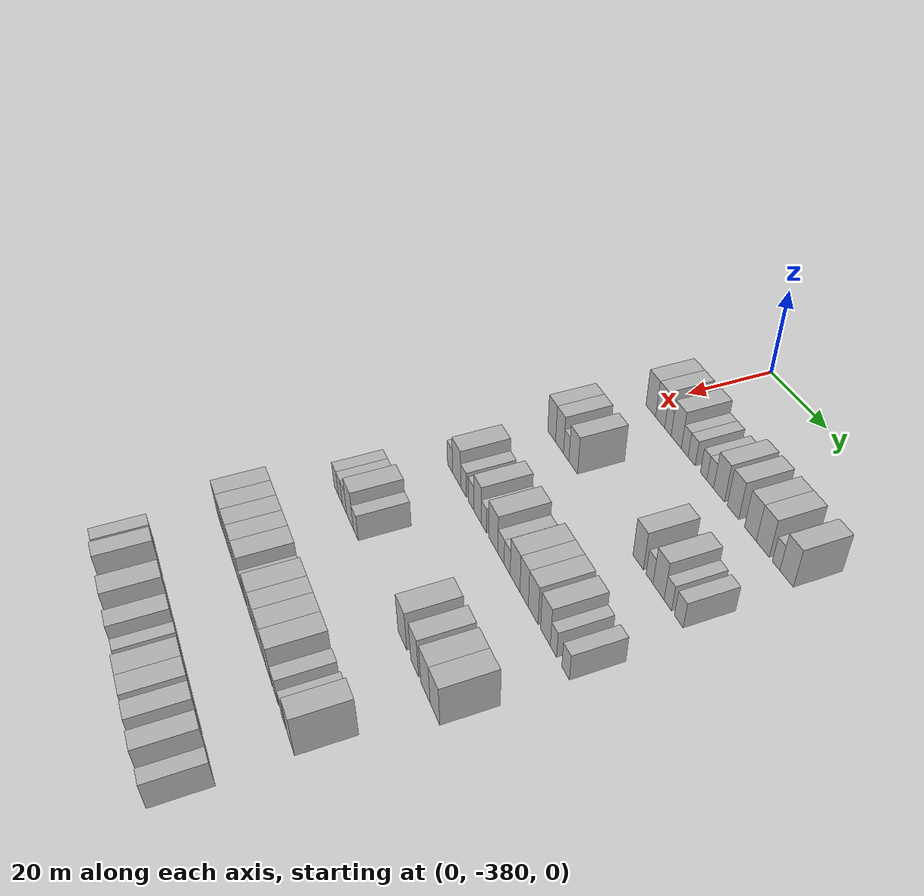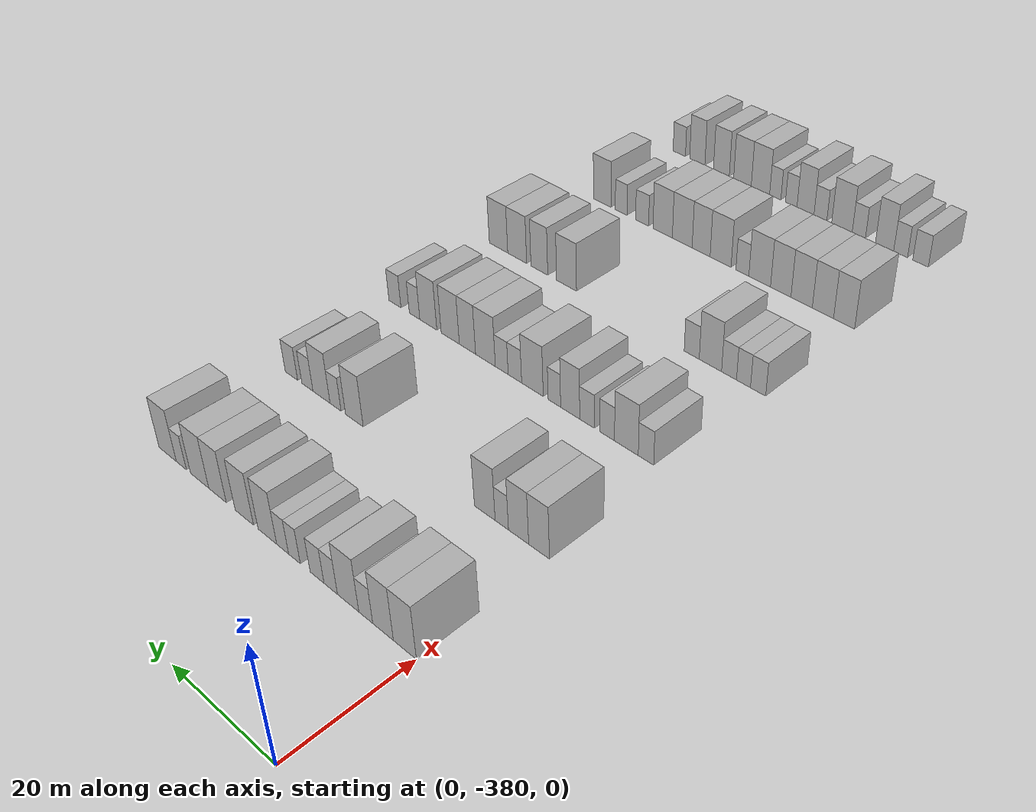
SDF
<sdf version="1.6">
 <world name="default">
  <model name="building_1">
   <static>1</static>
   <pose>25.0000 -377.9265 0 0.000000 0.000000 0.000000</pose>
   <link name="link">
    <pose>0 0 4.50 0 0 0</pose>
    <collision name="collision"><geometry><box><size>10.0000 4.1470 9.0000</size></box></geometry></collision>
    <visual name="visual">
     <cast_shadows>0</cast_shadows>
     <geometry><box><size>10.0000 4.1470 9.0000</size></box></geometry>
     <material>
      <script>
       <uri>model://HANNAS_wall/materials/scripts</uri>
       <uri>model://HANNAS_wall/materials/textures</uri>
       <name>vrc/HANNAS_wall</name>
      </script>
     </material>
    </visual>
   </link>
  </model>
  <model name="building_2">
   <static>1</static>
   <pose>25.0000 -373.9460 0 0.000000 0.000000 0.000000</pose>
   <link name="link">
    <pose>0 0 4.50 0 0 0</pose>
    <collision name="collision"><geometry><box><size>10.0000 3.8139 9.0000</size></box></geometry></collision>
    <visual name="visual">
     <cast_shadows>0</cast_shadows>
     <geometry><box><size>10.0000 3.8139 9.0000</size></box></geometry>
     <material>
      <script>
       <uri>model://HANNAS_wall/materials/scripts</uri>
       <uri>model://HANNAS_wall/materials/textures</uri>
       <name>vrc/HANNAS_wall</name>
      </script>
     </material>
    </visual>
   </link>
  </model>
  <model name="building_3">
   <static>1</static>
   <pose>25.0000 -370.7243 0 0.000000 0.000000 0.000000</pose>
   <link name="link">
    <pose>0 0 3.00 0 0 0</pose>
    <collision name="collision"><geometry><box><size>10.0000 2.6295 6.0000</size></box></geometry></collision>
    <visual name="visual">
     <cast_shadows>0</cast_shadows>
     <geometry><box><size>10.0000 2.6295 6.0000</size></box></geometry>
     <material>
      <script>
       <uri>model://HANNAS_wall/materials/scripts</uri>
       <uri>model://HANNAS_wall/materials/textures</uri>
       <name>vrc/HANNAS_wall</name>
      </script>
     </material>
    </visual>
   </link>
  </model>
  <model name="building_4">
   <static>1</static>
   <pose>25.0000 -367.3511 0 0.000000 0.000000 0.000000</pose>
   <link name="link">
    <pose>0 0 4.50 0 0 0</pose>
    <collision name="collision"><geometry><box><size>10.0000 4.1169 9.0000</size></box></geometry></collision>
    <visual name="visual">
     <cast_shadows>0</cast_shadows>
     <geometry><box><size>10.0000 4.1169 9.0000</size></box></geometry>
     <material>
      <script>
       <uri>model://HANNAS_wall/materials/scripts</uri>
       <uri>model://HANNAS_wall/materials/textures</uri>
       <name>vrc/HANNAS_wall</name>
      </script>
     </material>
    </visual>
   </link>
  </model>
  <model name="building_5">
   <static>1</static>
   <pose>25.0000 -363.9666 0 0.000000 0.000000 0.000000</pose>
   <link name="link">
    <pose>0 0 3.00 0 0 0</pose>
    <collision name="collision"><geometry><box><size>10.0000 2.6521 6.0000</size></box></geometry></collision>
    <visual name="visual">
     <cast_shadows>0</cast_shadows>
     <geometry><box><size>10.0000 2.6521 6.0000</size></box></geometry>
     <material>
      <script>
       <uri>model://HANNAS_wall/materials/scripts</uri>
       <uri>model://HANNAS_wall/materials/textures</uri>
       <name>vrc/HANNAS_wall</name>
      </script>
     </material>
    </visual>
   </link>
  </model>
  <model name="building_6">
   <static>1</static>
   <pose>25.0000 -361.2505 0 0.000000 0.000000 0.000000</pose>
   <link name="link">
    <pose>0 0 3.00 0 0 0</pose>
    <collision name="collision"><geometry><box><size>10.0000 2.7803 6.0000</size></box></geometry></collision>
    <visual name="visual">
     <cast_shadows>0</cast_shadows>
     <geometry><box><size>10.0000 2.7803 6.0000</size></box></geometry>
     <material>
      <script>
       <uri>model://HANNAS_wall/materials/scripts</uri>
       <uri>model://HANNAS_wall/materials/textures</uri>
       <name>vrc/HANNAS_wall</name>
      </script>
     </material>
    </visual>
   </link>
  </model>
  <model name="building_7">
   <static>1</static>
   <pose>25.0000 -356.6554 0 0.000000 0.000000 0.000000</pose>
   <link name="link">
    <pose>0 0 3.00 0 0 0</pose>
    <collision name="collision"><geometry><box><size>10.0000 2.4098 6.0000</size></box></geometry></collision>
    <visual name="visual">
     <cast_shadows>0</cast_shadows>
     <geometry><box><size>10.0000 2.4098 6.0000</size></box></geometry>
     <material>
      <script>
       <uri>model://HANNAS_wall/materials/scripts</uri>
       <uri>model://HANNAS_wall/materials/textures</uri>
       <name>vrc/HANNAS_wall</name>
      </script>
     </material>
    </visual>
   </link>
  </model>
  <model name="building_8">
   <static>1</static>
   <pose>25.0000 -354.2036 0 0.000000 0.000000 0.000000</pose>
   <link name="link">
    <pose>0 0 3.00 0 0 0</pose>
    <collision name="collision"><geometry><box><size>10.0000 2.4939 6.0000</size></box></geometry></collision>
    <visual name="visual">
     <cast_shadows>0</cast_shadows>
     <geometry><box><size>10.0000 2.4939 6.0000</size></box></geometry>
     <material>
      <script>
       <uri>model://HANNAS_wall/materials/scripts</uri>
       <uri>model://HANNAS_wall/materials/textures</uri>
       <name>vrc/HANNAS_wall</name>
      </script>
     </material>
    </visual>
   </link>
  </model>
  <model name="building_9">
   <static>1</static>
   <pose>25.0000 -350.9690 0 0.000000 0.000000 0.000000</pose>
   <link name="link">
    <pose>0 0 4.50 0 0 0</pose>
    <collision name="collision"><geometry><box><size>10.0000 3.9753 9.0000</size></box></geometry></collision>
    <visual name="visual">
     <cast_shadows>0</cast_shadows>
     <geometry><box><size>10.0000 3.9753 9.0000</size></box></geometry>
     <material>
      <script>
       <uri>model://HANNAS_wall/materials/scripts</uri>
       <uri>model://HANNAS_wall/materials/textures</uri>
       <name>vrc/HANNAS_wall</name>
      </script>
     </material>
    </visual>
   </link>
  </model>
  <model name="building_10">
   <static>1</static>
   <pose>25.0000 -345.9639 0 0.000000 0.000000 0.000000</pose>
   <link name="link">
    <pose>0 0 4.50 0 0 0</pose>
    <collision name="collision"><geometry><box><size>10.0000 4.0350 9.0000</size></box></geometry></collision>
    <visual name="visual">
     <cast_shadows>0</cast_shadows>
     <geometry><box><size>10.0000 4.0350 9.0000</size></box></geometry>
     <material>
      <script>
       <uri>model://HANNAS_wall/materials/scripts</uri>
       <uri>model://HANNAS_wall/materials/textures</uri>
       <name>vrc/HANNAS_wall</name>
      </script>
     </material>
    </visual>
   </link>
  </model>
  <model name="building_11">
   <static>1</static>
   <pose>25.0000 -339.9500 0 0.000000 0.000000 0.000000</pose>
   <link name="link">
    <pose>0 0 4.50 0 0 0</pose>
    <collision name="collision"><geometry><box><size>10.0000 3.9927 9.0000</size></box></geometry></collision>
    <visual name="visual">
     <cast_shadows>0</cast_shadows>
     <geometry><box><size>10.0000 3.9927 9.0000</size></box></geometry>
     <material>
      <script>
       <uri>model://HANNAS_wall/materials/scripts</uri>
       <uri>model://HANNAS_wall/materials/textures</uri>
       <name>vrc/HANNAS_wall</name>
      </script>
     </material>
    </visual>
   </link>
  </model>
  <model name="building_12">
   <static>1</static>
   <pose>25.0000 -335.8329 0 0.000000 0.000000 0.000000</pose>
   <link name="link">
    <pose>0 0 4.50 0 0 0</pose>
    <collision name="collision"><geometry><box><size>10.0000 4.2416 9.0000</size></box></geometry></collision>
    <visual name="visual">
     <cast_shadows>0</cast_shadows>
     <geometry><box><size>10.0000 4.2416 9.0000</size></box></geometry>
     <material>
      <script>
       <uri>model://HANNAS_wall/materials/scripts</uri>
       <uri>model://HANNAS_wall/materials/textures</uri>
       <name>vrc/HANNAS_wall</name>
      </script>
     </material>
    </visual>
   </link>
  </model>
  <model name="building_13">
   <static>1</static>
   <pose>25.0000 -331.5101 0 0.000000 0.000000 0.000000</pose>
   <link name="link">
    <pose>0 0 3.00 0 0 0</pose>
    <collision name="collision"><geometry><box><size>10.0000 2.4041 6.0000</size></box></geometry></collision>
    <visual name="visual">
     <cast_shadows>0</cast_shadows>
     <geometry><box><size>10.0000 2.4041 6.0000</size></box></geometry>
     <material>
      <script>
       <uri>model://HANNAS_wall/materials/scripts</uri>
       <uri>model://HANNAS_wall/materials/textures</uri>
       <name>vrc/HANNAS_wall</name>
      </script>
     </material>
    </visual>
   </link>
  </model>
  <model name="building_14">
   <static>1</static>
   <pose>25.0000 -328.2037 0 0.000000 0.000000 0.000000</pose>
   <link name="link">
    <pose>0 0 4.50 0 0 0</pose>
    <collision name="collision"><geometry><box><size>10.0000 4.2085 9.0000</size></box></geometry></collision>
    <visual name="visual">
     <cast_shadows>0</cast_shadows>
     <geometry><box><size>10.0000 4.2085 9.0000</size></box></geometry>
     <material>
      <script>
       <uri>model://HANNAS_wall/materials/scripts</uri>
       <uri>model://HANNAS_wall/materials/textures</uri>
       <name>vrc/HANNAS_wall</name>
      </script>
     </material>
    </visual>
   </link>
  </model>
  <model name="building_190">
   <static>1</static>
   <pose>47.0000 -378.1285 0 0.000000 0.000000 0.000000</pose>
   <link name="link">
    <pose>0 0 4.50 0 0 0</pose>
    <collision name="collision"><geometry><box><size>10.0000 3.7429 9.0000</size></box></geometry></collision>
    <visual name="visual">
     <cast_shadows>0</cast_shadows>
     <geometry><box><size>10.0000 3.7429 9.0000</size></box></geometry>
     <material>
      <script>
       <uri>model://HANNAS_wall/materials/scripts</uri>
       <uri>model://HANNAS_wall/materials/textures</uri>
       <name>vrc/HANNAS_wall</name>
      </script>
     </material>
    </visual>
   </link>
  </model>
  <model name="building_191">
   <static>1</static>
   <pose>47.0000 -374.4032 0 0.000000 0.000000 0.000000</pose>
   <link name="link">
    <pose>0 0 4.50 0 0 0</pose>
    <collision name="collision"><geometry><box><size>10.0000 3.7078 9.0000</size></box></geometry></collision>
    <visual name="visual">
     <cast_shadows>0</cast_shadows>
     <geometry><box><size>10.0000 3.7078 9.0000</size></box></geometry>
     <material>
      <script>
       <uri>model://HANNAS_wall/materials/scripts</uri>
       <uri>model://HANNAS_wall/materials/textures</uri>
       <name>vrc/HANNAS_wall</name>
      </script>
     </material>
    </visual>
   </link>
  </model>
  <model name="building_192">
   <static>1</static>
   <pose>47.0000 -371.3031 0 0.000000 0.000000 0.000000</pose>
   <link name="link">
    <pose>0 0 3.00 0 0 0</pose>
    <collision name="collision"><geometry><box><size>10.0000 2.4923 6.0000</size></box></geometry></collision>
    <visual name="visual">
     <cast_shadows>0</cast_shadows>
     <geometry><box><size>10.0000 2.4923 6.0000</size></box></geometry>
     <material>
      <script>
       <uri>model://HANNAS_wall/materials/scripts</uri>
       <uri>model://HANNAS_wall/materials/textures</uri>
       <name>vrc/HANNAS_wall</name>
      </script>
     </material>
    </visual>
   </link>
  </model>
  <model name="building_193">
   <static>1</static>
   <pose>47.0000 -368.0840 0 0.000000 0.000000 0.000000</pose>
   <link name="link">
    <pose>0 0 4.50 0 0 0</pose>
    <collision name="collision"><geometry><box><size>10.0000 3.9459 9.0000</size></box></geometry></collision>
    <visual name="visual">
     <cast_shadows>0</cast_shadows>
     <geometry><box><size>10.0000 3.9459 9.0000</size></box></geometry>
     <material>
      <script>
       <uri>model://HANNAS_wall/materials/scripts</uri>
       <uri>model://HANNAS_wall/materials/textures</uri>
       <name>vrc/HANNAS_wall</name>
      </script>
     </material>
    </visual>
   </link>
  </model>
  <model name="building_194">
   <static>1</static>
   <pose>47.0000 -341.2129 0 0.000000 0.000000 0.000000</pose>
   <link name="link">
    <pose>0 0 4.50 0 0 0</pose>
    <collision name="collision"><geometry><box><size>10.0000 3.9321 9.0000</size></box></geometry></collision>
    <visual name="visual">
     <cast_shadows>0</cast_shadows>
     <geometry><box><size>10.0000 3.9321 9.0000</size></box></geometry>
     <material>
      <script>
       <uri>model://HANNAS_wall/materials/scripts</uri>
       <uri>model://HANNAS_wall/materials/textures</uri>
       <name>vrc/HANNAS_wall</name>
      </script>
     </material>
    </visual>
   </link>
  </model>
  <model name="building_195">
   <static>1</static>
   <pose>47.0000 -336.9878 0 0.000000 0.000000 0.000000</pose>
   <link name="link">
    <pose>0 0 3.00 0 0 0</pose>
    <collision name="collision"><geometry><box><size>10.0000 2.5180 6.0000</size></box></geometry></collision>
    <visual name="visual">
     <cast_shadows>0</cast_shadows>
     <geometry><box><size>10.0000 2.5180 6.0000</size></box></geometry>
     <material>
      <script>
       <uri>model://HANNAS_wall/materials/scripts</uri>
       <uri>model://HANNAS_wall/materials/textures</uri>
       <name>vrc/HANNAS_wall</name>
      </script>
     </material>
    </visual>
   </link>
  </model>
  <model name="building_196">
   <static>1</static>
   <pose>47.0000 -333.7466 0 0.000000 0.000000 0.000000</pose>
   <link name="link">
    <pose>0 0 4.50 0 0 0</pose>
    <collision name="collision"><geometry><box><size>10.0000 3.9646 9.0000</size></box></geometry></collision>
    <visual name="visual">
     <cast_shadows>0</cast_shadows>
     <geometry><box><size>10.0000 3.9646 9.0000</size></box></geometry>
     <material>
      <script>
       <uri>model://HANNAS_wall/materials/scripts</uri>
       <uri>model://HANNAS_wall/materials/textures</uri>
       <name>vrc/HANNAS_wall</name>
      </script>
     </material>
    </visual>
   </link>
  </model>
  <model name="building_197">
   <static>1</static>
   <pose>47.0000 -330.4567 0 0.000000 0.000000 0.000000</pose>
   <link name="link">
    <pose>0 0 3.00 0 0 0</pose>
    <collision name="collision"><geometry><box><size>10.0000 2.6152 6.0000</size></box></geometry></collision>
    <visual name="visual">
     <cast_shadows>0</cast_shadows>
     <geometry><box><size>10.0000 2.6152 6.0000</size></box></geometry>
     <material>
      <script>
       <uri>model://HANNAS_wall/materials/scripts</uri>
       <uri>model://HANNAS_wall/materials/textures</uri>
       <name>vrc/HANNAS_wall</name>
      </script>
     </material>
    </visual>
   </link>
  </model>
  <model name="building_198">
   <static>1</static>
   <pose>47.0000 -326.6626 0 0.000000 0.000000 0.000000</pose>
   <link name="link">
    <pose>0 0 3.00 0 0 0</pose>
    <collision name="collision"><geometry><box><size>10.0000 2.9728 6.0000</size></box></geometry></collision>
    <visual name="visual">
     <cast_shadows>0</cast_shadows>
     <geometry><box><size>10.0000 2.9728 6.0000</size></box></geometry>
     <material>
      <script>
       <uri>model://HANNAS_wall/materials/scripts</uri>
       <uri>model://HANNAS_wall/materials/textures</uri>
       <name>vrc/HANNAS_wall</name>
      </script>
     </material>
    </visual>
   </link>
  </model>
  <model name="building_369">
   <static>1</static>
   <pose>69.0000 -376.5888 0 0.000000 0.000000 0.000000</pose>
   <link name="link">
    <pose>0 0 3.00 0 0 0</pose>
    <collision name="collision"><geometry><box><size>10.0000 2.8224 6.0000</size></box></geometry></collision>
    <visual name="visual">
     <cast_shadows>0</cast_shadows>
     <geometry><box><size>10.0000 2.8224 6.0000</size></box></geometry>
     <material>
      <script>
       <uri>model://HANNAS_wall/materials/scripts</uri>
       <uri>model://HANNAS_wall/materials/textures</uri>
       <name>vrc/HANNAS_wall</name>
      </script>
     </material>
    </visual>
   </link>
  </model>
  <model name="building_370">
   <static>1</static>
   <pose>69.0000 -372.9656 0 0.000000 0.000000 0.000000</pose>
   <link name="link">
    <pose>0 0 4.50 0 0 0</pose>
    <collision name="collision"><geometry><box><size>10.0000 4.4240 9.0000</size></box></geometry></collision>
    <visual name="visual">
     <cast_shadows>0</cast_shadows>
     <geometry><box><size>10.0000 4.4240 9.0000</size></box></geometry>
     <material>
      <script>
       <uri>model://HANNAS_wall/materials/scripts</uri>
       <uri>model://HANNAS_wall/materials/textures</uri>
       <name>vrc/HANNAS_wall</name>
      </script>
     </material>
    </visual>
   </link>
  </model>
  <model name="building_371">
   <static>1</static>
   <pose>69.0000 -369.3298 0 0.000000 0.000000 0.000000</pose>
   <link name="link">
    <pose>0 0 3.00 0 0 0</pose>
    <collision name="collision"><geometry><box><size>10.0000 2.8475 6.0000</size></box></geometry></collision>
    <visual name="visual">
     <cast_shadows>0</cast_shadows>
     <geometry><box><size>10.0000 2.8475 6.0000</size></box></geometry>
     <material>
      <script>
       <uri>model://HANNAS_wall/materials/scripts</uri>
       <uri>model://HANNAS_wall/materials/textures</uri>
       <name>vrc/HANNAS_wall</name>
      </script>
     </material>
    </visual>
   </link>
  </model>
  <model name="building_372">
   <static>1</static>
   <pose>69.0000 -365.4876 0 0.000000 0.000000 0.000000</pose>
   <link name="link">
    <pose>0 0 3.00 0 0 0</pose>
    <collision name="collision"><geometry><box><size>10.0000 2.8370 6.0000</size></box></geometry></collision>
    <visual name="visual">
     <cast_shadows>0</cast_shadows>
     <geometry><box><size>10.0000 2.8370 6.0000</size></box></geometry>
     <material>
      <script>
       <uri>model://HANNAS_wall/materials/scripts</uri>
       <uri>model://HANNAS_wall/materials/textures</uri>
       <name>vrc/HANNAS_wall</name>
      </script>
     </material>
    </visual>
   </link>
  </model>
  <model name="building_373">
   <static>1</static>
   <pose>69.0000 -362.1826 0 0.000000 0.000000 0.000000</pose>
   <link name="link">
    <pose>0 0 4.50 0 0 0</pose>
    <collision name="collision"><geometry><box><size>10.0000 3.7731 9.0000</size></box></geometry></collision>
    <visual name="visual">
     <cast_shadows>0</cast_shadows>
     <geometry><box><size>10.0000 3.7731 9.0000</size></box></geometry>
     <material>
      <script>
       <uri>model://HANNAS_wall/materials/scripts</uri>
       <uri>model://HANNAS_wall/materials/textures</uri>
       <name>vrc/HANNAS_wall</name>
      </script>
     </material>
    </visual>
   </link>
  </model>
  <model name="building_374">
   <static>1</static>
   <pose>69.0000 -359.0438 0 0.000000 0.000000 0.000000</pose>
   <link name="link">
    <pose>0 0 3.00 0 0 0</pose>
    <collision name="collision"><geometry><box><size>10.0000 2.5043 6.0000</size></box></geometry></collision>
    <visual name="visual">
     <cast_shadows>0</cast_shadows>
     <geometry><box><size>10.0000 2.5043 6.0000</size></box></geometry>
     <material>
      <script>
       <uri>model://HANNAS_wall/materials/scripts</uri>
       <uri>model://HANNAS_wall/materials/textures</uri>
       <name>vrc/HANNAS_wall</name>
      </script>
     </material>
    </visual>
   </link>
  </model>
  <model name="building_375">
   <static>1</static>
   <pose>69.0000 -354.5667 0 0.000000 0.000000 0.000000</pose>
   <link name="link">
    <pose>0 0 4.50 0 0 0</pose>
    <collision name="collision"><geometry><box><size>10.0000 4.4499 9.0000</size></box></geometry></collision>
    <visual name="visual">
     <cast_shadows>0</cast_shadows>
     <geometry><box><size>10.0000 4.4499 9.0000</size></box></geometry>
     <material>
      <script>
       <uri>model://HANNAS_wall/materials/scripts</uri>
       <uri>model://HANNAS_wall/materials/textures</uri>
       <name>vrc/HANNAS_wall</name>
      </script>
     </material>
    </visual>
   </link>
  </model>
  <model name="building_376">
   <static>1</static>
   <pose>69.0000 -350.9269 0 0.000000 0.000000 0.000000</pose>
   <link name="link">
    <pose>0 0 3.00 0 0 0</pose>
    <collision name="collision"><geometry><box><size>10.0000 2.8296 6.0000</size></box></geometry></collision>
    <visual name="visual">
     <cast_shadows>0</cast_shadows>
     <geometry><box><size>10.0000 2.8296 6.0000</size></box></geometry>
     <material>
      <script>
       <uri>model://HANNAS_wall/materials/scripts</uri>
       <uri>model://HANNAS_wall/materials/textures</uri>
       <name>vrc/HANNAS_wall</name>
      </script>
     </material>
    </visual>
   </link>
  </model>
  <model name="building_377">
   <static>1</static>
   <pose>69.0000 -348.1424 0 0.000000 0.000000 0.000000</pose>
   <link name="link">
    <pose>0 0 3.00 0 0 0</pose>
    <collision name="collision"><geometry><box><size>10.0000 2.7395 6.0000</size></box></geometry></collision>
    <visual name="visual">
     <cast_shadows>0</cast_shadows>
     <geometry><box><size>10.0000 2.7395 6.0000</size></box></geometry>
     <material>
      <script>
       <uri>model://HANNAS_wall/materials/scripts</uri>
       <uri>model://HANNAS_wall/materials/textures</uri>
       <name>vrc/HANNAS_wall</name>
      </script>
     </material>
    </visual>
   </link>
  </model>
  <model name="building_378">
   <static>1</static>
   <pose>69.0000 -344.6300 0 0.000000 0.000000 0.000000</pose>
   <link name="link">
    <pose>0 0 4.50 0 0 0</pose>
    <collision name="collision"><geometry><box><size>10.0000 4.2852 9.0000</size></box></geometry></collision>
    <visual name="visual">
     <cast_shadows>0</cast_shadows>
     <geometry><box><size>10.0000 4.2852 9.0000</size></box></geometry>
     <material>
      <script>
       <uri>model://HANNAS_wall/materials/scripts</uri>
       <uri>model://HANNAS_wall/materials/textures</uri>
       <name>vrc/HANNAS_wall</name>
      </script>
     </material>
    </visual>
   </link>
  </model>
  <model name="building_379">
   <static>1</static>
   <pose>69.0000 -340.6866 0 0.000000 0.000000 0.000000</pose>
   <link name="link">
    <pose>0 0 4.50 0 0 0</pose>
    <collision name="collision"><geometry><box><size>10.0000 3.6016 9.0000</size></box></geometry></collision>
    <visual name="visual">
     <cast_shadows>0</cast_shadows>
     <geometry><box><size>10.0000 3.6016 9.0000</size></box></geometry>
     <material>
      <script>
       <uri>model://HANNAS_wall/materials/scripts</uri>
       <uri>model://HANNAS_wall/materials/textures</uri>
       <name>vrc/HANNAS_wall</name>
      </script>
     </material>
    </visual>
   </link>
  </model>
  <model name="building_380">
   <static>1</static>
   <pose>69.0000 -336.8320 0 0.000000 0.000000 0.000000</pose>
   <link name="link">
    <pose>0 0 4.50 0 0 0</pose>
    <collision name="collision"><geometry><box><size>10.0000 4.1077 9.0000</size></box></geometry></collision>
    <visual name="visual">
     <cast_shadows>0</cast_shadows>
     <geometry><box><size>10.0000 4.1077 9.0000</size></box></geometry>
     <material>
      <script>
       <uri>model://HANNAS_wall/materials/scripts</uri>
       <uri>model://HANNAS_wall/materials/textures</uri>
       <name>vrc/HANNAS_wall</name>
      </script>
     </material>
    </visual>
   </link>
  </model>
  <model name="building_381">
   <static>1</static>
   <pose>69.0000 -331.8034 0 0.000000 0.000000 0.000000</pose>
   <link name="link">
    <pose>0 0 4.50 0 0 0</pose>
    <collision name="collision"><geometry><box><size>10.0000 3.9494 9.0000</size></box></geometry></collision>
    <visual name="visual">
     <cast_shadows>0</cast_shadows>
     <geometry><box><size>10.0000 3.9494 9.0000</size></box></geometry>
     <material>
      <script>
       <uri>model://HANNAS_wall/materials/scripts</uri>
       <uri>model://HANNAS_wall/materials/textures</uri>
       <name>vrc/HANNAS_wall</name>
      </script>
     </material>
    </visual>
   </link>
  </model>
  <model name="building_382">
   <static>1</static>
   <pose>69.0000 -328.5934 0 0.000000 0.000000 0.000000</pose>
   <link name="link">
    <pose>0 0 3.00 0 0 0</pose>
    <collision name="collision"><geometry><box><size>10.0000 2.4705 6.0000</size></box></geometry></collision>
    <visual name="visual">
     <cast_shadows>0</cast_shadows>
     <geometry><box><size>10.0000 2.4705 6.0000</size></box></geometry>
     <material>
      <script>
       <uri>model://HANNAS_wall/materials/scripts</uri>
       <uri>model://HANNAS_wall/materials/textures</uri>
       <name>vrc/HANNAS_wall</name>
      </script>
     </material>
    </visual>
   </link>
  </model>
  <model name="building_383">
   <static>1</static>
   <pose>69.0000 -323.9112 0 0.000000 0.000000 0.000000</pose>
   <link name="link">
    <pose>0 0 3.00 0 0 0</pose>
    <collision name="collision"><geometry><box><size>10.0000 2.8940 6.0000</size></box></geometry></collision>
    <visual name="visual">
     <cast_shadows>0</cast_shadows>
     <geometry><box><size>10.0000 2.8940 6.0000</size></box></geometry>
     <material>
      <script>
       <uri>model://HANNAS_wall/materials/scripts</uri>
       <uri>model://HANNAS_wall/materials/textures</uri>
       <name>vrc/HANNAS_wall</name>
      </script>
     </material>
    </visual>
   </link>
  </model>
  <model name="building_540">
   <static>1</static>
   <pose>91.0000 -378.6105 0 0.000000 0.000000 0.000000</pose>
   <link name="link">
    <pose>0 0 3.00 0 0 0</pose>
    <collision name="collision"><geometry><box><size>10.0000 2.7790 6.0000</size></box></geometry></collision>
    <visual name="visual">
     <cast_shadows>0</cast_shadows>
     <geometry><box><size>10.0000 2.7790 6.0000</size></box></geometry>
     <material>
      <script>
       <uri>model://HANNAS_wall/materials/scripts</uri>
       <uri>model://HANNAS_wall/materials/textures</uri>
       <name>vrc/HANNAS_wall</name>
      </script>
     </material>
    </visual>
   </link>
  </model>
  <model name="building_541">
   <static>1</static>
   <pose>91.0000 -375.9244 0 0.000000 0.000000 0.000000</pose>
   <link name="link">
    <pose>0 0 3.00 0 0 0</pose>
    <collision name="collision"><geometry><box><size>10.0000 2.5931 6.0000</size></box></geometry></collision>
    <visual name="visual">
     <cast_shadows>0</cast_shadows>
     <geometry><box><size>10.0000 2.5931 6.0000</size></box></geometry>
     <material>
      <script>
       <uri>model://HANNAS_wall/materials/scripts</uri>
       <uri>model://HANNAS_wall/materials/textures</uri>
       <name>vrc/HANNAS_wall</name>
      </script>
     </material>
    </visual>
   </link>
  </model>
  <model name="building_542">
   <static>1</static>
   <pose>91.0000 -373.2211 0 0.000000 0.000000 0.000000</pose>
   <link name="link">
    <pose>0 0 3.00 0 0 0</pose>
    <collision name="collision"><geometry><box><size>10.0000 2.8136 6.0000</size></box></geometry></collision>
    <visual name="visual">
     <cast_shadows>0</cast_shadows>
     <geometry><box><size>10.0000 2.8136 6.0000</size></box></geometry>
     <material>
      <script>
       <uri>model://HANNAS_wall/materials/scripts</uri>
       <uri>model://HANNAS_wall/materials/textures</uri>
       <name>vrc/HANNAS_wall</name>
      </script>
     </material>
    </visual>
   </link>
  </model>
  <model name="building_543">
   <static>1</static>
   <pose>91.0000 -369.6739 0 0.000000 0.000000 0.000000</pose>
   <link name="link">
    <pose>0 0 4.50 0 0 0</pose>
    <collision name="collision"><geometry><box><size>10.0000 4.2807 9.0000</size></box></geometry></collision>
    <visual name="visual">
     <cast_shadows>0</cast_shadows>
     <geometry><box><size>10.0000 4.2807 9.0000</size></box></geometry>
     <material>
      <script>
       <uri>model://HANNAS_wall/materials/scripts</uri>
       <uri>model://HANNAS_wall/materials/textures</uri>
       <name>vrc/HANNAS_wall</name>
      </script>
     </material>
    </visual>
   </link>
  </model>
  <model name="building_544">
   <static>1</static>
   <pose>91.0000 -366.0645 0 0.000000 0.000000 0.000000</pose>
   <link name="link">
    <pose>0 0 3.00 0 0 0</pose>
    <collision name="collision"><geometry><box><size>10.0000 2.9380 6.0000</size></box></geometry></collision>
    <visual name="visual">
     <cast_shadows>0</cast_shadows>
     <geometry><box><size>10.0000 2.9380 6.0000</size></box></geometry>
     <material>
      <script>
       <uri>model://HANNAS_wall/materials/scripts</uri>
       <uri>model://HANNAS_wall/materials/textures</uri>
       <name>vrc/HANNAS_wall</name>
      </script>
     </material>
    </visual>
   </link>
  </model>
  <model name="building_545">
   <static>1</static>
   <pose>91.0000 -339.9380 0 0.000000 0.000000 0.000000</pose>
   <link name="link">
    <pose>0 0 4.50 0 0 0</pose>
    <collision name="collision"><geometry><box><size>10.0000 4.4384 9.0000</size></box></geometry></collision>
    <visual name="visual">
     <cast_shadows>0</cast_shadows>
     <geometry><box><size>10.0000 4.4384 9.0000</size></box></geometry>
     <material>
      <script>
       <uri>model://HANNAS_wall/materials/scripts</uri>
       <uri>model://HANNAS_wall/materials/textures</uri>
       <name>vrc/HANNAS_wall</name>
      </script>
     </material>
    </visual>
   </link>
  </model>
  <model name="building_546">
   <static>1</static>
   <pose>91.0000 -333.7948 0 0.000000 0.000000 0.000000</pose>
   <link name="link">
    <pose>0 0 4.50 0 0 0</pose>
    <collision name="collision"><geometry><box><size>10.0000 3.8480 9.0000</size></box></geometry></collision>
    <visual name="visual">
     <cast_shadows>0</cast_shadows>
     <geometry><box><size>10.0000 3.8480 9.0000</size></box></geometry>
     <material>
      <script>
       <uri>model://HANNAS_wall/materials/scripts</uri>
       <uri>model://HANNAS_wall/materials/textures</uri>
       <name>vrc/HANNAS_wall</name>
      </script>
     </material>
    </visual>
   </link>
  </model>
  <model name="building_547">
   <static>1</static>
   <pose>91.0000 -328.6469 0 0.000000 0.000000 0.000000</pose>
   <link name="link">
    <pose>0 0 4.50 0 0 0</pose>
    <collision name="collision"><geometry><box><size>10.0000 4.4477 9.0000</size></box></geometry></collision>
    <visual name="visual">
     <cast_shadows>0</cast_shadows>
     <geometry><box><size>10.0000 4.4477 9.0000</size></box></geometry>
     <material>
      <script>
       <uri>model://HANNAS_wall/materials/scripts</uri>
       <uri>model://HANNAS_wall/materials/textures</uri>
       <name>vrc/HANNAS_wall</name>
      </script>
     </material>
    </visual>
   </link>
  </model>
  <model name="building_548">
   <static>1</static>
   <pose>91.0000 -324.2189 0 0.000000 0.000000 0.000000</pose>
   <link name="link">
    <pose>0 0 4.50 0 0 0</pose>
    <collision name="collision"><geometry><box><size>10.0000 4.4083 9.0000</size></box></geometry></collision>
    <visual name="visual">
     <cast_shadows>0</cast_shadows>
     <geometry><box><size>10.0000 4.4083 9.0000</size></box></geometry>
     <material>
      <script>
       <uri>model://HANNAS_wall/materials/scripts</uri>
       <uri>model://HANNAS_wall/materials/textures</uri>
       <name>vrc/HANNAS_wall</name>
      </script>
     </material>
    </visual>
   </link>
  </model>
  <model name="building_727">
   <static>1</static>
   <pose>113.0000 -378.0349 0 0.000000 0.000000 0.000000</pose>
   <link name="link">
    <pose>0 0 4.50 0 0 0</pose>
    <collision name="collision"><geometry><box><size>10.0000 3.9301 9.0000</size></box></geometry></collision>
    <visual name="visual">
     <cast_shadows>0</cast_shadows>
     <geometry><box><size>10.0000 3.9301 9.0000</size></box></geometry>
     <material>
      <script>
       <uri>model://HANNAS_wall/materials/scripts</uri>
       <uri>model://HANNAS_wall/materials/textures</uri>
       <name>vrc/HANNAS_wall</name>
      </script>
     </material>
    </visual>
   </link>
  </model>
  <model name="building_728">
   <static>1</static>
   <pose>113.0000 -374.0432 0 0.000000 0.000000 0.000000</pose>
   <link name="link">
    <pose>0 0 4.50 0 0 0</pose>
    <collision name="collision"><geometry><box><size>10.0000 4.0533 9.0000</size></box></geometry></collision>
    <visual name="visual">
     <cast_shadows>0</cast_shadows>
     <geometry><box><size>10.0000 4.0533 9.0000</size></box></geometry>
     <material>
      <script>
       <uri>model://HANNAS_wall/materials/scripts</uri>
       <uri>model://HANNAS_wall/materials/textures</uri>
       <name>vrc/HANNAS_wall</name>
      </script>
     </material>
    </visual>
   </link>
  </model>
  <model name="building_729">
   <static>1</static>
   <pose>113.0000 -369.9414 0 0.000000 0.000000 0.000000</pose>
   <link name="link">
    <pose>0 0 4.50 0 0 0</pose>
    <collision name="collision"><geometry><box><size>10.0000 4.1503 9.0000</size></box></geometry></collision>
    <visual name="visual">
     <cast_shadows>0</cast_shadows>
     <geometry><box><size>10.0000 4.1503 9.0000</size></box></geometry>
     <material>
      <script>
       <uri>model://HANNAS_wall/materials/scripts</uri>
       <uri>model://HANNAS_wall/materials/textures</uri>
       <name>vrc/HANNAS_wall</name>
      </script>
     </material>
    </visual>
   </link>
  </model>
  <model name="building_730">
   <static>1</static>
   <pose>113.0000 -365.8363 0 0.000000 0.000000 0.000000</pose>
   <link name="link">
    <pose>0 0 4.50 0 0 0</pose>
    <collision name="collision"><geometry><box><size>10.0000 4.0599 9.0000</size></box></geometry></collision>
    <visual name="visual">
     <cast_shadows>0</cast_shadows>
     <geometry><box><size>10.0000 4.0599 9.0000</size></box></geometry>
     <material>
      <script>
       <uri>model://HANNAS_wall/materials/scripts</uri>
       <uri>model://HANNAS_wall/materials/textures</uri>
       <name>vrc/HANNAS_wall</name>
      </script>
     </material>
    </visual>
   </link>
  </model>
  <model name="building_731">
   <static>1</static>
   <pose>113.0000 -361.6132 0 0.000000 0.000000 0.000000</pose>
   <link name="link">
    <pose>0 0 4.50 0 0 0</pose>
    <collision name="collision"><geometry><box><size>10.0000 4.3864 9.0000</size></box></geometry></collision>
    <visual name="visual">
     <cast_shadows>0</cast_shadows>
     <geometry><box><size>10.0000 4.3864 9.0000</size></box></geometry>
     <material>
      <script>
       <uri>model://HANNAS_wall/materials/scripts</uri>
       <uri>model://HANNAS_wall/materials/textures</uri>
       <name>vrc/HANNAS_wall</name>
      </script>
     </material>
    </visual>
   </link>
  </model>
  <model name="building_732">
   <static>1</static>
   <pose>113.0000 -358.0893 0 0.000000 0.000000 0.000000</pose>
   <link name="link">
    <pose>0 0 3.00 0 0 0</pose>
    <collision name="collision"><geometry><box><size>10.0000 2.6614 6.0000</size></box></geometry></collision>
    <visual name="visual">
     <cast_shadows>0</cast_shadows>
     <geometry><box><size>10.0000 2.6614 6.0000</size></box></geometry>
     <material>
      <script>
       <uri>model://HANNAS_wall/materials/scripts</uri>
       <uri>model://HANNAS_wall/materials/textures</uri>
       <name>vrc/HANNAS_wall</name>
      </script>
     </material>
    </visual>
   </link>
  </model>
  <model name="building_733">
   <static>1</static>
   <pose>113.0000 -353.5486 0 0.000000 0.000000 0.000000</pose>
   <link name="link">
    <pose>0 0 4.50 0 0 0</pose>
    <collision name="collision"><geometry><box><size>10.0000 4.4200 9.0000</size></box></geometry></collision>
    <visual name="visual">
     <cast_shadows>0</cast_shadows>
     <geometry><box><size>10.0000 4.4200 9.0000</size></box></geometry>
     <material>
      <script>
       <uri>model://HANNAS_wall/materials/scripts</uri>
       <uri>model://HANNAS_wall/materials/textures</uri>
       <name>vrc/HANNAS_wall</name>
      </script>
     </material>
    </visual>
   </link>
  </model>
  <model name="building_734">
   <static>1</static>
   <pose>113.0000 -349.4113 0 0.000000 0.000000 0.000000</pose>
   <link name="link">
    <pose>0 0 4.50 0 0 0</pose>
    <collision name="collision"><geometry><box><size>10.0000 3.8546 9.0000</size></box></geometry></collision>
    <visual name="visual">
     <cast_shadows>0</cast_shadows>
     <geometry><box><size>10.0000 3.8546 9.0000</size></box></geometry>
     <material>
      <script>
       <uri>model://HANNAS_wall/materials/scripts</uri>
       <uri>model://HANNAS_wall/materials/textures</uri>
       <name>vrc/HANNAS_wall</name>
      </script>
     </material>
    </visual>
   </link>
  </model>
  <model name="building_735">
   <static>1</static>
   <pose>113.0000 -345.3198 0 0.000000 0.000000 0.000000</pose>
   <link name="link">
    <pose>0 0 4.50 0 0 0</pose>
    <collision name="collision"><geometry><box><size>10.0000 4.3286 9.0000</size></box></geometry></collision>
    <visual name="visual">
     <cast_shadows>0</cast_shadows>
     <geometry><box><size>10.0000 4.3286 9.0000</size></box></geometry>
     <material>
      <script>
       <uri>model://HANNAS_wall/materials/scripts</uri>
       <uri>model://HANNAS_wall/materials/textures</uri>
       <name>vrc/HANNAS_wall</name>
      </script>
     </material>
    </visual>
   </link>
  </model>
  <model name="building_736">
   <static>1</static>
   <pose>113.0000 -341.0038 0 0.000000 0.000000 0.000000</pose>
   <link name="link">
    <pose>0 0 4.50 0 0 0</pose>
    <collision name="collision"><geometry><box><size>10.0000 4.3033 9.0000</size></box></geometry></collision>
    <visual name="visual">
     <cast_shadows>0</cast_shadows>
     <geometry><box><size>10.0000 4.3033 9.0000</size></box></geometry>
     <material>
      <script>
       <uri>model://HANNAS_wall/materials/scripts</uri>
       <uri>model://HANNAS_wall/materials/textures</uri>
       <name>vrc/HANNAS_wall</name>
      </script>
     </material>
    </visual>
   </link>
  </model>
  <model name="building_737">
   <static>1</static>
   <pose>113.0000 -336.3749 0 0.000000 0.000000 0.000000</pose>
   <link name="link">
    <pose>0 0 3.00 0 0 0</pose>
    <collision name="collision"><geometry><box><size>10.0000 2.9544 6.0000</size></box></geometry></collision>
    <visual name="visual">
     <cast_shadows>0</cast_shadows>
     <geometry><box><size>10.0000 2.9544 6.0000</size></box></geometry>
     <material>
      <script>
       <uri>model://HANNAS_wall/materials/scripts</uri>
       <uri>model://HANNAS_wall/materials/textures</uri>
       <name>vrc/HANNAS_wall</name>
      </script>
     </material>
    </visual>
   </link>
  </model>
  <model name="building_738">
   <static>1</static>
   <pose>113.0000 -331.5333 0 0.000000 0.000000 0.000000</pose>
   <link name="link">
    <pose>0 0 3.00 0 0 0</pose>
    <collision name="collision"><geometry><box><size>10.0000 2.7288 6.0000</size></box></geometry></collision>
    <visual name="visual">
     <cast_shadows>0</cast_shadows>
     <geometry><box><size>10.0000 2.7288 6.0000</size></box></geometry>
     <material>
      <script>
       <uri>model://HANNAS_wall/materials/scripts</uri>
       <uri>model://HANNAS_wall/materials/textures</uri>
       <name>vrc/HANNAS_wall</name>
      </script>
     </material>
    </visual>
   </link>
  </model>
  <model name="building_739">
   <static>1</static>
   <pose>113.0000 -327.0675 0 0.000000 0.000000 0.000000</pose>
   <link name="link">
    <pose>0 0 4.50 0 0 0</pose>
    <collision name="collision"><geometry><box><size>10.0000 4.2029 9.0000</size></box></geometry></collision>
    <visual name="visual">
     <cast_shadows>0</cast_shadows>
     <geometry><box><size>10.0000 4.2029 9.0000</size></box></geometry>
     <material>
      <script>
       <uri>model://HANNAS_wall/materials/scripts</uri>
       <uri>model://HANNAS_wall/materials/textures</uri>
       <name>vrc/HANNAS_wall</name>
      </script>
     </material>
    </visual>
   </link>
  </model>
  <model name="building_915">
   <static>1</static>
   <pose>135.0000 -377.5091 0 0.000000 0.000000 0.000000</pose>
   <link name="link">
    <pose>0 0 3.00 0 0 0</pose>
    <collision name="collision"><geometry><box><size>10.0000 2.9818 6.0000</size></box></geometry></collision>
    <visual name="visual">
     <cast_shadows>0</cast_shadows>
     <geometry><box><size>10.0000 2.9818 6.0000</size></box></geometry>
     <material>
      <script>
       <uri>model://HANNAS_wall/materials/scripts</uri>
       <uri>model://HANNAS_wall/materials/textures</uri>
       <name>vrc/HANNAS_wall</name>
      </script>
     </material>
    </visual>
   </link>
  </model>
  <model name="building_916">
   <static>1</static>
   <pose>135.0000 -373.6698 0 0.000000 0.000000 0.000000</pose>
   <link name="link">
    <pose>0 0 3.00 0 0 0</pose>
    <collision name="collision"><geometry><box><size>10.0000 2.6969 6.0000</size></box></geometry></collision>
    <visual name="visual">
     <cast_shadows>0</cast_shadows>
     <geometry><box><size>10.0000 2.6969 6.0000</size></box></geometry>
     <material>
      <script>
       <uri>model://HANNAS_wall/materials/scripts</uri>
       <uri>model://HANNAS_wall/materials/textures</uri>
       <name>vrc/HANNAS_wall</name>
      </script>
     </material>
    </visual>
   </link>
  </model>
  <model name="building_917">
   <static>1</static>
   <pose>135.0000 -370.5159 0 0.000000 0.000000 0.000000</pose>
   <link name="link">
    <pose>0 0 4.50 0 0 0</pose>
    <collision name="collision"><geometry><box><size>10.0000 3.6108 9.0000</size></box></geometry></collision>
    <visual name="visual">
     <cast_shadows>0</cast_shadows>
     <geometry><box><size>10.0000 3.6108 9.0000</size></box></geometry>
     <material>
      <script>
       <uri>model://HANNAS_wall/materials/scripts</uri>
       <uri>model://HANNAS_wall/materials/textures</uri>
       <name>vrc/HANNAS_wall</name>
      </script>
     </material>
    </visual>
   </link>
  </model>
  <model name="building_918">
   <static>1</static>
   <pose>135.0000 -365.3770 0 0.000000 0.000000 0.000000</pose>
   <link name="link">
    <pose>0 0 3.00 0 0 0</pose>
    <collision name="collision"><geometry><box><size>10.0000 2.6671 6.0000</size></box></geometry></collision>
    <visual name="visual">
     <cast_shadows>0</cast_shadows>
     <geometry><box><size>10.0000 2.6671 6.0000</size></box></geometry>
     <material>
      <script>
       <uri>model://HANNAS_wall/materials/scripts</uri>
       <uri>model://HANNAS_wall/materials/textures</uri>
       <name>vrc/HANNAS_wall</name>
      </script>
     </material>
    </visual>
   </link>
  </model>
  <model name="building_919">
   <static>1</static>
   <pose>135.0000 -361.9301 0 0.000000 0.000000 0.000000</pose>
   <link name="link">
    <pose>0 0 4.50 0 0 0</pose>
    <collision name="collision"><geometry><box><size>10.0000 4.2265 9.0000</size></box></geometry></collision>
    <visual name="visual">
     <cast_shadows>0</cast_shadows>
     <geometry><box><size>10.0000 4.2265 9.0000</size></box></geometry>
     <material>
      <script>
       <uri>model://HANNAS_wall/materials/scripts</uri>
       <uri>model://HANNAS_wall/materials/textures</uri>
       <name>vrc/HANNAS_wall</name>
      </script>
     </material>
    </visual>
   </link>
  </model>
  <model name="building_920">
   <static>1</static>
   <pose>135.0000 -357.4691 0 0.000000 0.000000 0.000000</pose>
   <link name="link">
    <pose>0 0 3.00 0 0 0</pose>
    <collision name="collision"><geometry><box><size>10.0000 2.6957 6.0000</size></box></geometry></collision>
    <visual name="visual">
     <cast_shadows>0</cast_shadows>
     <geometry><box><size>10.0000 2.6957 6.0000</size></box></geometry>
     <material>
      <script>
       <uri>model://HANNAS_wall/materials/scripts</uri>
       <uri>model://HANNAS_wall/materials/textures</uri>
       <name>vrc/HANNAS_wall</name>
      </script>
     </material>
    </visual>
   </link>
  </model>
  <model name="building_921">
   <static>1</static>
   <pose>135.0000 -354.3114 0 0.000000 0.000000 0.000000</pose>
   <link name="link">
    <pose>0 0 4.50 0 0 0</pose>
    <collision name="collision"><geometry><box><size>10.0000 3.6198 9.0000</size></box></geometry></collision>
    <visual name="visual">
     <cast_shadows>0</cast_shadows>
     <geometry><box><size>10.0000 3.6198 9.0000</size></box></geometry>
     <material>
      <script>
       <uri>model://HANNAS_wall/materials/scripts</uri>
       <uri>model://HANNAS_wall/materials/textures</uri>
       <name>vrc/HANNAS_wall</name>
      </script>
     </material>
    </visual>
   </link>
  </model>
  <model name="building_922">
   <static>1</static>
   <pose>135.0000 -351.2556 0 0.000000 0.000000 0.000000</pose>
   <link name="link">
    <pose>0 0 3.00 0 0 0</pose>
    <collision name="collision"><geometry><box><size>10.0000 2.4918 6.0000</size></box></geometry></collision>
    <visual name="visual">
     <cast_shadows>0</cast_shadows>
     <geometry><box><size>10.0000 2.4918 6.0000</size></box></geometry>
     <material>
      <script>
       <uri>model://HANNAS_wall/materials/scripts</uri>
       <uri>model://HANNAS_wall/materials/textures</uri>
       <name>vrc/HANNAS_wall</name>
      </script>
     </material>
    </visual>
   </link>
  </model>
  <model name="building_923">
   <static>1</static>
   <pose>135.0000 -347.7837 0 0.000000 0.000000 0.000000</pose>
   <link name="link">
    <pose>0 0 3.00 0 0 0</pose>
    <collision name="collision"><geometry><box><size>10.0000 2.4520 6.0000</size></box></geometry></collision>
    <visual name="visual">
     <cast_shadows>0</cast_shadows>
     <geometry><box><size>10.0000 2.4520 6.0000</size></box></geometry>
     <material>
      <script>
       <uri>model://HANNAS_wall/materials/scripts</uri>
       <uri>model://HANNAS_wall/materials/textures</uri>
       <name>vrc/HANNAS_wall</name>
      </script>
     </material>
    </visual>
   </link>
  </model>
  <model name="building_924">
   <static>1</static>
   <pose>135.0000 -344.5115 0 0.000000 0.000000 0.000000</pose>
   <link name="link">
    <pose>0 0 4.50 0 0 0</pose>
    <collision name="collision"><geometry><box><size>10.0000 4.0925 9.0000</size></box></geometry></collision>
    <visual name="visual">
     <cast_shadows>0</cast_shadows>
     <geometry><box><size>10.0000 4.0925 9.0000</size></box></geometry>
     <material>
      <script>
       <uri>model://HANNAS_wall/materials/scripts</uri>
       <uri>model://HANNAS_wall/materials/textures</uri>
       <name>vrc/HANNAS_wall</name>
      </script>
     </material>
    </visual>
   </link>
  </model>
  <model name="building_925">
   <static>1</static>
   <pose>135.0000 -340.4764 0 0.000000 0.000000 0.000000</pose>
   <link name="link">
    <pose>0 0 4.50 0 0 0</pose>
    <collision name="collision"><geometry><box><size>10.0000 3.9777 9.0000</size></box></geometry></collision>
    <visual name="visual">
     <cast_shadows>0</cast_shadows>
     <geometry><box><size>10.0000 3.9777 9.0000</size></box></geometry>
     <material>
      <script>
       <uri>model://HANNAS_wall/materials/scripts</uri>
       <uri>model://HANNAS_wall/materials/textures</uri>
       <name>vrc/HANNAS_wall</name>
      </script>
     </material>
    </visual>
   </link>
  </model>
  <model name="building_926">
   <static>1</static>
   <pose>135.0000 -335.6594 0 0.000000 0.000000 0.000000</pose>
   <link name="link">
    <pose>0 0 4.50 0 0 0</pose>
    <collision name="collision"><geometry><box><size>10.0000 3.6562 9.0000</size></box></geometry></collision>
    <visual name="visual">
     <cast_shadows>0</cast_shadows>
     <geometry><box><size>10.0000 3.6562 9.0000</size></box></geometry>
     <material>
      <script>
       <uri>model://HANNAS_wall/materials/scripts</uri>
       <uri>model://HANNAS_wall/materials/textures</uri>
       <name>vrc/HANNAS_wall</name>
      </script>
     </material>
    </visual>
   </link>
  </model>
  <model name="building_927">
   <static>1</static>
   <pose>135.0000 -330.0289 0 0.000000 0.000000 0.000000</pose>
   <link name="link">
    <pose>0 0 4.50 0 0 0</pose>
    <collision name="collision"><geometry><box><size>10.0000 3.6049 9.0000</size></box></geometry></collision>
    <visual name="visual">
     <cast_shadows>0</cast_shadows>
     <geometry><box><size>10.0000 3.6049 9.0000</size></box></geometry>
     <material>
      <script>
       <uri>model://HANNAS_wall/materials/scripts</uri>
       <uri>model://HANNAS_wall/materials/textures</uri>
       <name>vrc/HANNAS_wall</name>
      </script>
     </material>
    </visual>
   </link>
  </model>
  <model name="building_928">
   <static>1</static>
   <pose>135.0000 -325.7420 0 0.000000 0.000000 0.000000</pose>
   <link name="link">
    <pose>0 0 3.00 0 0 0</pose>
    <collision name="collision"><geometry><box><size>10.0000 2.9688 6.0000</size></box></geometry></collision>
    <visual name="visual">
     <cast_shadows>0</cast_shadows>
     <geometry><box><size>10.0000 2.9688 6.0000</size></box></geometry>
     <material>
      <script>
       <uri>model://HANNAS_wall/materials/scripts</uri>
       <uri>model://HANNAS_wall/materials/textures</uri>
       <name>vrc/HANNAS_wall</name>
      </script>
     </material>
    </visual>
   </link>
  </model>
 </world>
</sdf>
